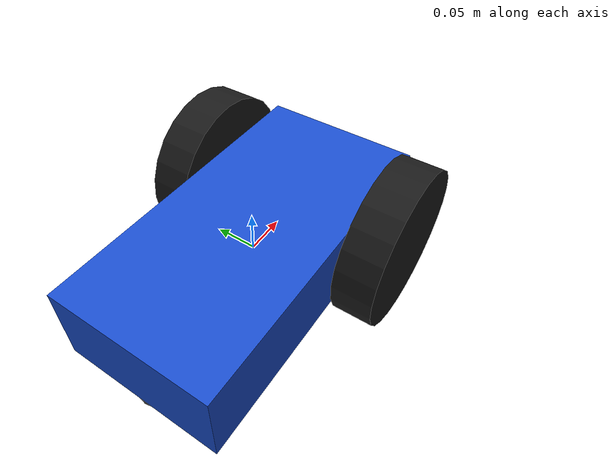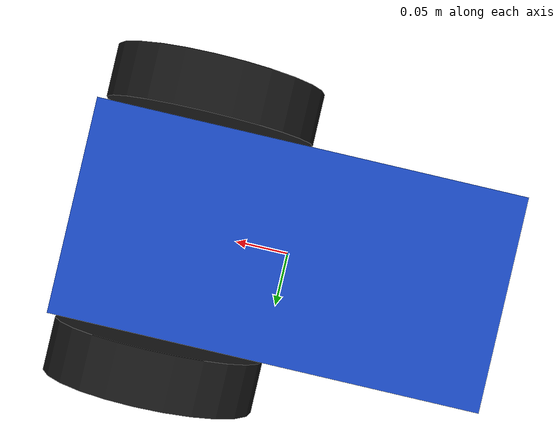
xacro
<?xml version="1.0"?>
<robot name="my_robot" xmlns:xacro="http://www.ros.org/wiki/xacro">

  <xacro:arg name="wheel_mu1" default="1.0" />

  <xacro:include filename="$(find my_robot_control)/urdf/my_robot.urdf.xacro" />

  <gazebo reference="base_link">
    <sensor name="imu_sensor" type="imu">
      <always_on>true</always_on>
      <update_rate>100</update_rate>
      <visualize>false</visualize>
      <imu>
        <angular_velocity>
          <x><noise type="none"/></x>
          <y><noise type="none"/></y>
          <z><noise type="none"/></z>
        </angular_velocity>
        <linear_acceleration>
          <x><noise type="none"/></x>
          <y><noise type="none"/></y>
          <z><noise type="none"/></z>
        </linear_acceleration>
      </imu>
      <plugin name="imu" filename="libgazebo_ros_imu_sensor.so">
        <ros>
          <namespace>/</namespace>
        </ros>
        <initial_orientation_as_reference>false</initial_orientation_as_reference>
        <frame_name>base_link</frame_name>
      </plugin>
    </sensor>
  </gazebo>

  <gazebo>
    <plugin name="ground_truth" filename="libgazebo_ros_p3d.so">
      <ros>
        <namespace>/ground_truth</namespace>
      </ros>
      <body_name>base_link</body_name>
      <frame_name>world</frame_name>
      <update_rate>50.0</update_rate>
      <gaussian_noise>0.0</gaussian_noise>
    </plugin>
  </gazebo>

</robot>

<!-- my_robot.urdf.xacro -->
<robot name="my_robot" xmlns:xacro="http://www.ros.org/wiki/xacro">

  <xacro:arg name="use_ros2_control" default="true" />
  <!-- atrito lateral das rodas (mu1, ver comentario nas rodas). Argumento para que
       a pratica 05.1 possa usar outro valor sem copiar o modelo. -->
  <xacro:arg name="wheel_mu1" default="0.1" />
  <xacro:arg name="controllers_file"
             default="$(find my_robot_control)/config/diff_drive_controller.yaml" />

  <!-- ==================== dimensoes ==================== -->
  <xacro:property name="chassis_x" value="0.4" />
  <xacro:property name="chassis_y" value="0.2" />
  <xacro:property name="chassis_z" value="0.1" />
  <xacro:property name="chassis_mass" value="5.0" />

  <xacro:property name="wheel_radius" value="0.1" />
  <xacro:property name="wheel_length" value="0.05" />
  <xacro:property name="wheel_mass" value="0.5" />
  <xacro:property name="wheel_offset_x" value="0.1" />
  <xacro:property name="wheel_offset_y" value="0.13" />

  <xacro:property name="caster_radius" value="0.05" />
  <xacro:property name="caster_mass" value="0.2" />

  <xacro:property name="half_pi" value="1.5707963267948966" />

  <!-- Parametros derivados usados tambem pelo controlador (config/*.yaml)
       wheel_separation = 2 * wheel_offset_y = 0.26 m
       wheel_radius     = 0.1 m -->

  <!-- ==================== macros de inercia ==================== -->
  <!-- Caixa solida centrada na origem -->
  <xacro:macro name="box_inertia" params="m x y z">
    <inertial>
      <mass value="${m}" />
      <inertia ixx="${m * (y*y + z*z) / 12.0}" ixy="0.0" ixz="0.0"
               iyy="${m * (x*x + z*z) / 12.0}" iyz="0.0"
               izz="${m * (x*x + y*y) / 12.0}" />
    </inertial>
  </xacro:macro>

  <!-- Cilindro solido girando em torno de Y (mesma rpy da geometria da roda) -->
  <xacro:macro name="wheel_inertia" params="m r l">
    <inertial>
      <origin xyz="0 0 0" rpy="${half_pi} 0 0" />
      <mass value="${m}" />
      <inertia ixx="${m * (3.0*r*r + l*l) / 12.0}" ixy="0.0" ixz="0.0"
               iyy="${m * (3.0*r*r + l*l) / 12.0}" iyz="0.0"
               izz="${m * r * r / 2.0}" />
    </inertial>
  </xacro:macro>

  <!-- Esfera solida -->
  <xacro:macro name="sphere_inertia" params="m r">
    <inertial>
      <mass value="${m}" />
      <inertia ixx="${2.0 * m * r * r / 5.0}" ixy="0.0" ixz="0.0"
               iyy="${2.0 * m * r * r / 5.0}" iyz="0.0"
               izz="${2.0 * m * r * r / 5.0}" />
    </inertial>
  </xacro:macro>

  <!-- ==================== chassi ==================== -->
  <link name="base_link">
    <visual>
      <!-- mesh unitario escalado para as dimensoes do chassi -->
      <geometry>
        <mesh filename="package://my_robot_control/meshes/chassis_box.stl"
              scale="${chassis_x} ${chassis_y} ${chassis_z}" />
      </geometry>
      <material name="blue">
        <color rgba="0.1 0.3 0.8 1.0" />
      </material>
    </visual>
    <collision>
      <geometry>
        <box size="${chassis_x} ${chassis_y} ${chassis_z}" />
      </geometry>
    </collision>
    <xacro:box_inertia m="${chassis_mass}" x="${chassis_x}" y="${chassis_y}" z="${chassis_z}" />
  </link>

  <gazebo reference="base_link">
    <material>Gazebo/Blue</material>
    <mu1>0.2</mu1>
    <mu2>0.2</mu2>
  </gazebo>

  <!-- ==================== rodas ==================== -->
  <xacro:macro name="wheel" params="prefix reflect">
    <link name="${prefix}_wheel">
      <visual>
        <origin xyz="0 0 0" rpy="${half_pi} 0 0" />
        <geometry>
          <cylinder radius="${wheel_radius}" length="${wheel_length}" />
        </geometry>
        <material name="black">
          <color rgba="0.1 0.1 0.1 1.0" />
        </material>
      </visual>
      <collision>
        <origin xyz="0 0 0" rpy="${half_pi} 0 0" />
        <geometry>
          <cylinder radius="${wheel_radius}" length="${wheel_length}" />
        </geometry>
      </collision>
      <xacro:wheel_inertia m="${wheel_mass}" r="${wheel_radius}" l="${wheel_length}" />
    </link>

    <joint name="${prefix}_wheel_joint" type="continuous">
      <parent link="base_link" />
      <child link="${prefix}_wheel" />
      <origin xyz="${wheel_offset_x} ${reflect * wheel_offset_y} 0" rpy="0 0 0" />
      <axis xyz="0 1 0" />
      <!-- effort e o limite de torque que o gazebo_ros2_control usa como fmax do
           motor da junta; deixar folga evita que o servo de velocidade sature
           quando o atrito resiste ao movimento. -->
      <limit effort="100.0" velocity="20.0" />
      <dynamics damping="0.0" friction="0.0" />
    </joint>

    <gazebo reference="${prefix}_wheel">
      <material>Gazebo/Black</material>
      <fdir1>0 1 0</fdir1>
      <mu1>$(arg wheel_mu1)</mu1>
      <mu2>1.5</mu2>
      <kp>1000000.0</kp>
      <kd>10.0</kd>
      <minDepth>0.001</minDepth>
      <maxVel>0.1</maxVel>
    </gazebo>
  </xacro:macro>

  <xacro:wheel prefix="left" reflect="1" />
  <xacro:wheel prefix="right" reflect="-1" />

  <!-- ==================== roda boba (esfera sem atrito) ==================== -->
  <link name="caster_wheel">
    <visual>
      <geometry>
        <sphere radius="${caster_radius}" />
      </geometry>
      <material name="black" />
    </visual>
    <collision>
      <geometry>
        <sphere radius="${caster_radius}" />
      </geometry>
    </collision>
    <xacro:sphere_inertia m="${caster_mass}" r="${caster_radius}" />
  </link>

  <joint name="caster_wheel_joint" type="fixed">
    <parent link="base_link" />
    <child link="caster_wheel" />
    <origin xyz="-0.15 0 -0.05" rpy="0 0 0" />
  </joint>

  <!-- Atrito zero - a esfera desliza livremente, entao nao introduz um torque
       resistente que atrapalharia o giro sobre o proprio eixo. -->
  <gazebo reference="caster_wheel">
    <material>Gazebo/Black</material>
    <mu1>0.0</mu1>
    <mu2>0.0</mu2>
    <kp>1000000.0</kp>
    <kd>10.0</kd>
    <minDepth>0.001</minDepth>
  </gazebo>

  <!-- ==================== ros2_control ==================== -->
  <xacro:if value="$(arg use_ros2_control)">

    <!-- Interface de hardware simulada - comando em velocidade nas duas rodas,
         realimentacao de posicao e velocidade (usada pela odometria). -->
    <ros2_control name="GazeboSystem" type="system">
      <hardware>
        <plugin>gazebo_ros2_control/GazeboSystem</plugin>
      </hardware>

      <joint name="left_wheel_joint">
        <command_interface name="velocity">
          <param name="min">-20.0</param>
          <param name="max">20.0</param>
        </command_interface>
        <state_interface name="position" />
        <state_interface name="velocity" />
      </joint>

      <joint name="right_wheel_joint">
        <command_interface name="velocity">
          <param name="min">-20.0</param>
          <param name="max">20.0</param>
        </command_interface>
        <state_interface name="position" />
        <state_interface name="velocity" />
      </joint>
    </ros2_control>

    <gazebo>
      <plugin name="gazebo_ros2_control" filename="libgazebo_ros2_control.so">
        <parameters>$(arg controllers_file)</parameters>
      </plugin>
    </gazebo>

  </xacro:if>

</robot>
